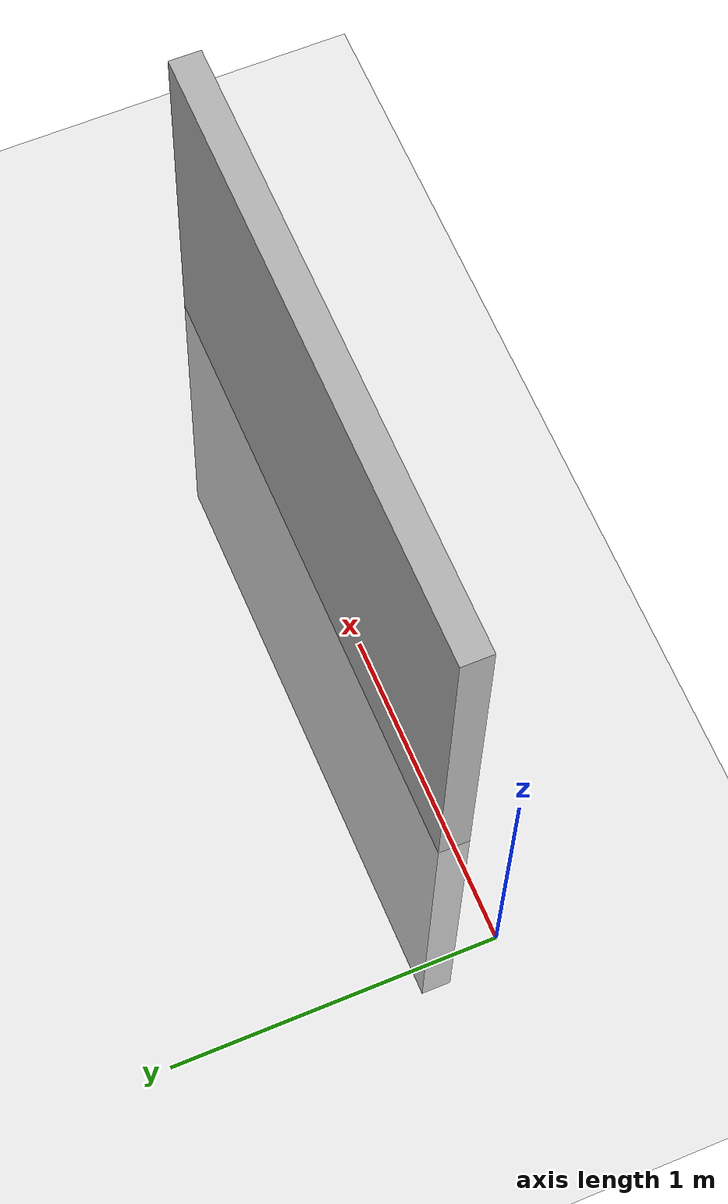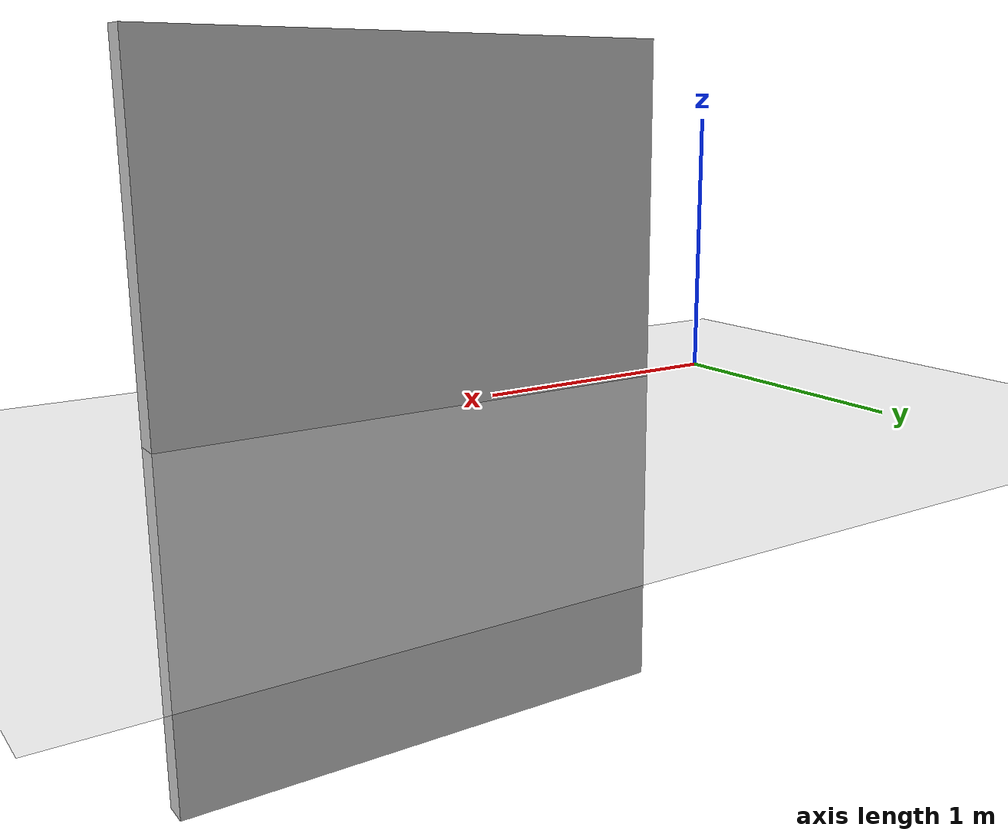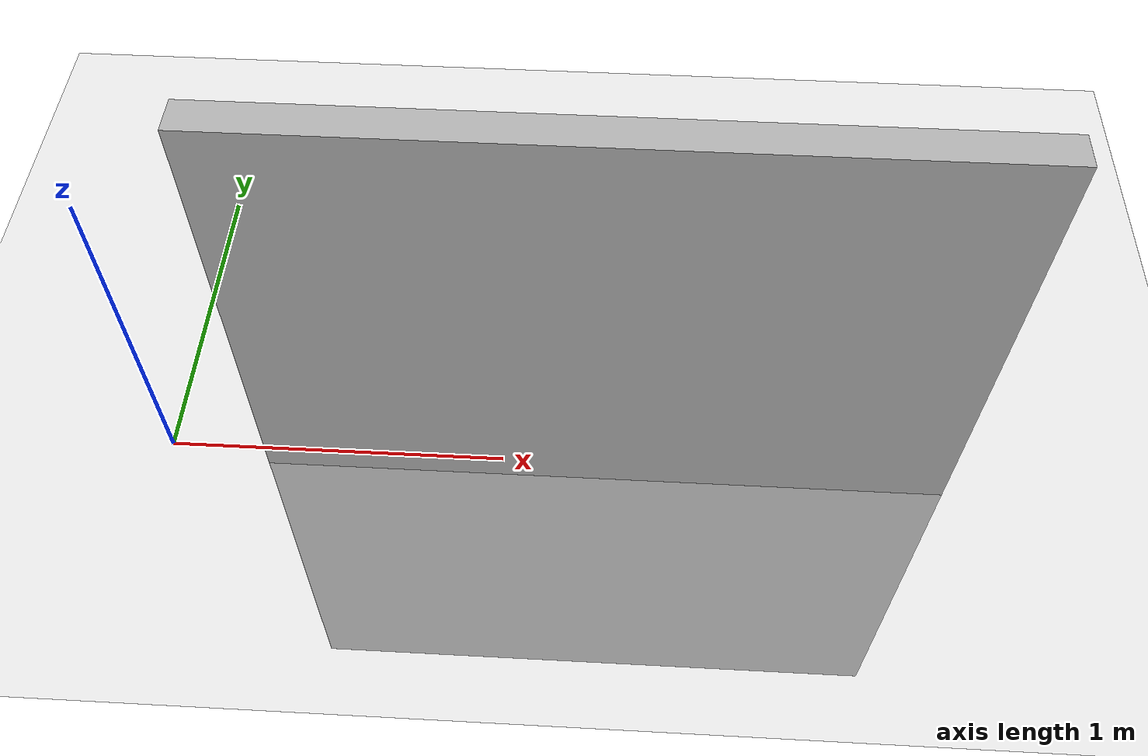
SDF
<?xml version="1.0" ?>
<sdf version="1.8">
  <world name="cam_scene">
    <physics name="slow_physics" type="ode">
      <max_step_size>0.001</max_step_size>
      <real_time_factor>0.1</real_time_factor>
      <real_time_update_rate>1000</real_time_update_rate>
    </physics>
    <plugin
      filename="ignition-gazebo-physics-system"
      name="ignition::gazebo::systems::Physics">
    </plugin>
    <plugin
      filename="ignition-gazebo-user-commands-system"
      name="ignition::gazebo::systems::UserCommands">
    </plugin>
    <plugin
      filename="ignition-gazebo-scene-broadcaster-system"
      name="ignition::gazebo::systems::SceneBroadcaster">
    </plugin>
    <plugin
      filename="ignition-gazebo-sensors-system"
      name="ignition::gazebo::systems::Sensors">
      <render_engine>ogre2</render_engine>
    </plugin>

    <gui fullscreen="0">

      <!-- 3D scene -->
      <plugin filename="MinimalScene" name="3D View">
        <ignition-gui>
          <title>3D View</title>
          <property type="bool" key="showTitleBar">false</property>
          <property type="string" key="state">docked</property>
        </ignition-gui>

        <engine>ogre2</engine>
        <scene>scene</scene>
        <ambient_light>0.4 0.4 0.4</ambient_light>
        <background_color>0.8 0.8 0.8</background_color>
        <camera_pose>-6 0 6 0 0.5 0</camera_pose>
        <camera_clip>
          <near>0.25</near>
          <far>25000</far>
        </camera_clip>
      </plugin>

      <!-- Plugins that add functionality to the scene -->
      <plugin filename="EntityContextMenuPlugin" name="Entity context menu">
        <ignition-gui>
          <property key="state" type="string">floating</property>
          <property key="width" type="double">5</property>
          <property key="height" type="double">5</property>
          <property key="showTitleBar" type="bool">false</property>
        </ignition-gui>
      </plugin>
      <plugin filename="GzSceneManager" name="Scene Manager">
        <ignition-gui>
          <property key="resizable" type="bool">false</property>
          <property key="width" type="double">5</property>
          <property key="height" type="double">5</property>
          <property key="state" type="string">floating</property>
          <property key="showTitleBar" type="bool">false</property>
        </ignition-gui>
      </plugin>
      <plugin filename="InteractiveViewControl" name="Interactive view control">
        <ignition-gui>
          <property key="resizable" type="bool">false</property>
          <property key="width" type="double">5</property>
          <property key="height" type="double">5</property>
          <property key="state" type="string">floating</property>
          <property key="showTitleBar" type="bool">false</property>
        </ignition-gui>
      </plugin>
      <plugin filename="CameraTracking" name="Camera Tracking">
        <ignition-gui>
          <property key="resizable" type="bool">false</property>
          <property key="width" type="double">5</property>
          <property key="height" type="double">5</property>
          <property key="state" type="string">floating</property>
          <property key="showTitleBar" type="bool">false</property>
        </ignition-gui>
      </plugin>
      <plugin filename="MarkerManager" name="Marker manager">
        <ignition-gui>
          <property key="resizable" type="bool">false</property>
          <property key="width" type="double">5</property>
          <property key="height" type="double">5</property>
          <property key="state" type="string">floating</property>
          <property key="showTitleBar" type="bool">false</property>
        </ignition-gui>
      </plugin>
      <plugin filename="SelectEntities" name="Select Entities">
        <ignition-gui>
          <anchors target="Select entities">
            <line own="right" target="right"/>
            <line own="top" target="top"/>
          </anchors>
          <property key="resizable" type="bool">false</property>
          <property key="width" type="double">5</property>
          <property key="height" type="double">5</property>
          <property key="state" type="string">floating</property>
          <property key="showTitleBar" type="bool">false</property>
        </ignition-gui>
      </plugin>
      <plugin filename="VisualizationCapabilities" name="Visualization Capabilities">
        <ignition-gui>
          <property key="resizable" type="bool">false</property>
          <property key="width" type="double">5</property>
          <property key="height" type="double">5</property>
          <property key="state" type="string">floating</property>
          <property key="showTitleBar" type="bool">false</property>
        </ignition-gui>
      </plugin>

      <plugin filename="Spawn" name="Spawn Entities">
        <ignition-gui>
          <anchors target="Select entities">
            <line own="right" target="right"/>
            <line own="top" target="top"/>
          </anchors>
          <property key="resizable" type="bool">false</property>
          <property key="width" type="double">5</property>
          <property key="height" type="double">5</property>
          <property key="state" type="string">floating</property>
          <property key="showTitleBar" type="bool">false</property>
        </ignition-gui>
      </plugin>

      <!-- World control -->
      <plugin filename="WorldControl" name="World control">
        <ignition-gui>
          <title>World control</title>
          <property type="bool" key="showTitleBar">false</property>
          <property type="bool" key="resizable">false</property>
          <property type="double" key="height">72</property>
          <property type="double" key="width">121</property>
          <property type="double" key="z">1</property>

          <property type="string" key="state">floating</property>
          <anchors target="3D View">
            <line own="left" target="left"/>
            <line own="bottom" target="bottom"/>
          </anchors>
        </ignition-gui>

        <play_pause>true</play_pause>
        <step>true</step>
        <start_paused>true</start_paused>
        <use_event>true</use_event>

      </plugin>

      <!-- World statistics -->
      <plugin filename="WorldStats" name="World stats">
        <ignition-gui>
          <title>World stats</title>
          <property type="bool" key="showTitleBar">false</property>
          <property type="bool" key="resizable">false</property>
          <property type="double" key="height">110</property>
          <property type="double" key="width">290</property>
          <property type="double" key="z">1</property>

          <property type="string" key="state">floating</property>
          <anchors target="3D View">
            <line own="right" target="right"/>
            <line own="bottom" target="bottom"/>
          </anchors>
        </ignition-gui>

        <sim_time>true</sim_time>
        <real_time>true</real_time>
        <real_time_factor>true</real_time_factor>
        <iterations>true</iterations>
      </plugin>

      <!-- Insert simple shapes -->
      <plugin filename="Shapes" name="Shapes">
        <ignition-gui>
          <property key="resizable" type="bool">false</property>
          <property key="x" type="double">0</property>
          <property key="y" type="double">0</property>
          <property key="width" type="double">250</property>
          <property key="height" type="double">50</property>
          <property key="state" type="string">floating</property>
          <property key="showTitleBar" type="bool">false</property>
          <property key="cardBackground" type="string">#666666</property>
        </ignition-gui>
      </plugin>

      <!-- Insert lights -->
      <plugin filename="Lights" name="Lights">
        <ignition-gui>
          <property key="resizable" type="bool">false</property>
          <property key="x" type="double">250</property>
          <property key="y" type="double">0</property>
          <property key="width" type="double">150</property>
          <property key="height" type="double">50</property>
          <property key="state" type="string">floating</property>
          <property key="showTitleBar" type="bool">false</property>
          <property key="cardBackground" type="string">#666666</property>
        </ignition-gui>
      </plugin>

      <!-- Translate / rotate -->
      <plugin filename="TransformControl" name="Transform control">
        <ignition-gui>
          <property key="resizable" type="bool">false</property>
          <property key="x" type="double">0</property>
          <property key="y" type="double">50</property>
          <property key="width" type="double">250</property>
          <property key="height" type="double">50</property>
          <property key="state" type="string">floating</property>
          <property key="showTitleBar" type="bool">false</property>
          <property key="cardBackground" type="string">#777777</property>
        </ignition-gui>

        <!-- disable legacy features used to connect this plugin to GzScene3D -->
        <legacy>false</legacy>
      </plugin>

      <!-- Inspector -->
      <plugin filename="ComponentInspector" name="Component inspector">
        <ignition-gui>
          <property type="string" key="state">docked_collapsed</property>
        </ignition-gui>
      </plugin>

      <!-- Entity tree -->
      <plugin filename="EntityTree" name="Entity tree">
        <ignition-gui>
          <property type="string" key="state">docked_collapsed</property>
        </ignition-gui>
      </plugin>

      <!-- View angle -->
      <plugin filename="ViewAngle" name="View angle">
        <ignition-gui>
          <property type="string" key="state">docked_collapsed</property>
        </ignition-gui>

        <!-- disable legacy features used to connect this plugin to GzScene3D -->
        <legacy>false</legacy>
      </plugin>

    </gui>

    <light type="directional" name="sun">
      <cast_shadows>true</cast_shadows>
      <pose>0 0 10 0 0 0</pose>
      <diffuse>0.8 0.8 0.8 1</diffuse>
      <specular>0.2 0.2 0.2 1</specular>
      <attenuation>
        <range>1000</range>
        <constant>0.9</constant>
        <linear>0.01</linear>
        <quadratic>0.001</quadratic>
      </attenuation>
      <direction>-0.5 0.1 -0.9</direction>
    </light>

    <model name="ground_plane">
      <static>true</static>
      <link name="link">
        <collision name="collision">
          <geometry>
            <plane>
              <normal>0 0 1</normal>
              <size>100 100</size>
            </plane>
          </geometry>
        </collision>
        <visual name="visual">
          <geometry>
            <plane>
              <normal>0 0 1</normal>
              <size>100 100</size>
            </plane>
          </geometry>
          <material>
            <ambient>0.8 0.8 0.8 1</ambient>
            <diffuse>0.8 0.8 0.8 1</diffuse>
            <specular>0.8 0.8 0.8 1</specular>
          </material>
        </visual>
      </link>
    </model>

    <model name="wall">
    <static>true</static>
    <link name="wall">
      <pose>1.3 0 0 0 0 1.57079633</pose>
      <collision name="wall_collision">
        <geometry>
          <box>
            <size>0.1 0.1 0.1</size>
          </box>
        </geometry>
      </collision>
      <visual name="wall_visual">
        <geometry>
          <box>
            <size>0.1 2 2.6</size>
          </box>
        </geometry>
      </visual>
    </link>
  </model>
  </world>
</sdf>
